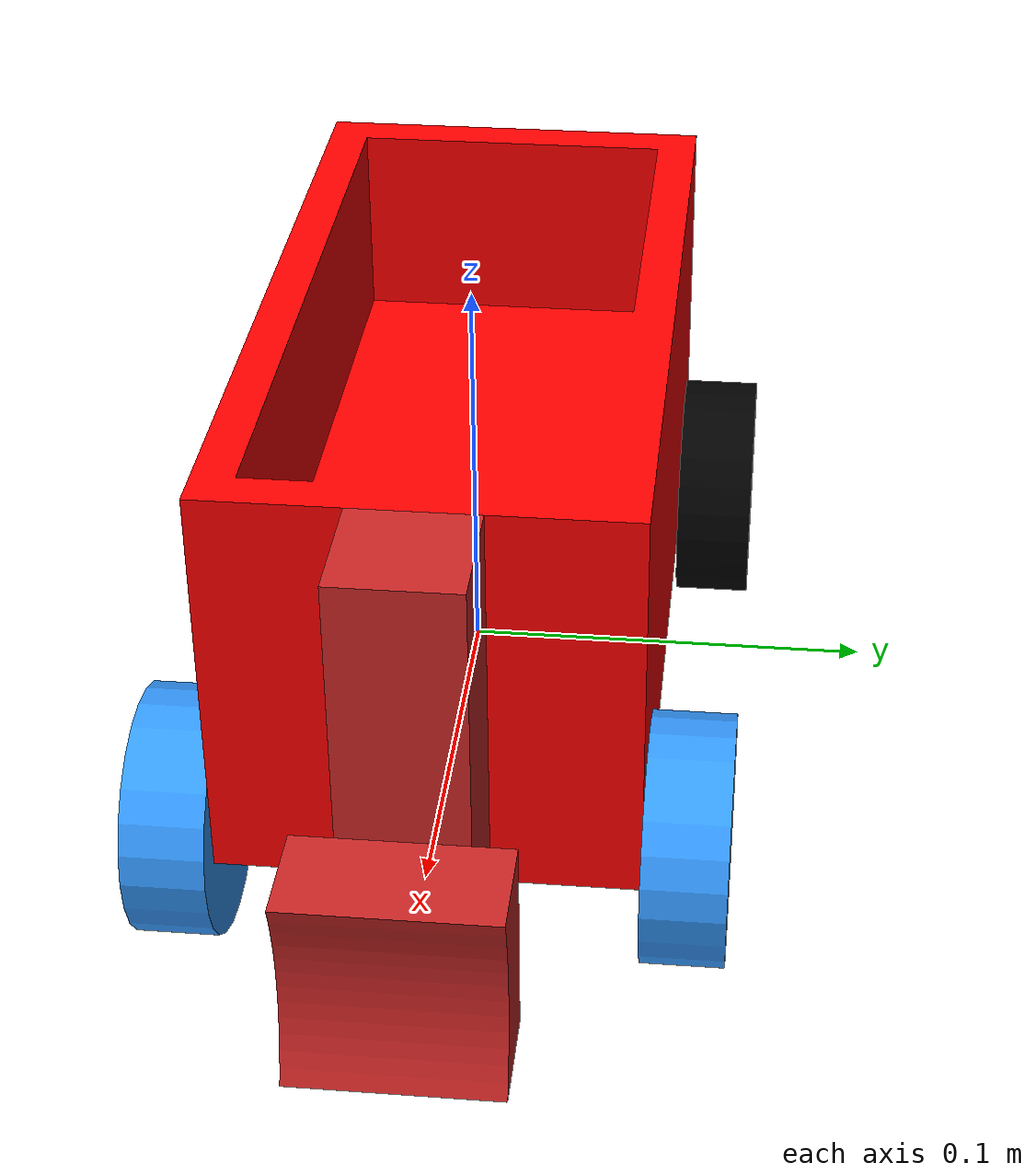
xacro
<?xml version="1.0"?>
<robot xmlns:xacro="http://www.ros.org/wiki/xacro"  name="robot">

    <xacro:include filename="robot_core.xacro" />
    <xacro:include filename="gazebo_control.xacro" />
    <xacro:include filename="arm_tr.xacro"/>
    <xacro:include filename="gripper_tr.xacro" />
    <xacro:include filename="lidar.xacro" />

    <ros2_control name="gripper_robot_gazebo_system" type="system">
        <hardware>
            <plugin>gazebo_ros2_control/GazeboSystem</plugin>
        </hardware>
        <xacro:arm_tr/>
        <xacro:gripper1_tr/>
    </ros2_control>
    <xacro:robot_controller/>

</robot>

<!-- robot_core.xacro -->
<robot xmlns:xacro="http://www.ros.org/wiki/xacro" >
<xacro:include filename="inertial_macros.xacro" />

    <material name="white">
        <color rgba="1 1 1 1" />
    </material>

    <material name="orange">
        <color rgba="1 0.5 0 1"/>
    </material>

    <material name="blue">
        <color rgba="0.2 0.6 1 1"/>
    </material>

    <material name="black">
        <color rgba="0 0 0 1"/>
    </material>

    <material name="red">
        <color rgba="1 0 0 1"/>
    </material>

<!-- BASE LINK -->
<link name="base_link">

</link>

<joint name="chassis_joint" type="fixed">
    <parent link="base_link"/>
    <child link="chassis"/>
    <origin xyz="0 0 0"/>
</joint>

<link name="chassis">
    <visual>
        <geometry>
            <mesh filename="file://$(find articubot_one)/description/NewBody.dae" scale="10 10 10"/>
        </geometry>
        <material name="red"/>
    </visual>
    <collision>
        <geometry>
         <mesh filename="file://$(find articubot_one)/description/NewBody.dae" scale="10 10 10"/>
        </geometry>
    </collision>
    <xacro:inertial_box mass="40" x="0.2" y="0.1" z="0.1">
        <origin xyz="0 0 0.05" rpy="0 0 0"/>
    </xacro:inertial_box>
</link>
<gazebo reference="chassis">
    <material>Gazebo/Orange</material>
</gazebo>

<!-- LEFT WHEEL back-->
<joint name= "left_wheel_back_joint" type="continuous">
    <parent link="base_link"/>
    <child link="left_wheel_back"/>
    <origin xyz=" -0.08 0.06 0" rpy="-${pi/2} 0 0"/>
    <axis xyz="0 0 1"/>
</joint>

<link name="left_wheel_back">
    <visual>
        <geometry>
            <cylinder length="0.02" radius="0.03" />
        </geometry>
        <material name="black"/>
    </visual>
    <collision>
        <geometry>
            <cylinder length="0.02" radius="0.03" />
        </geometry>
    </collision>
    <xacro:inertial_cylinder mass="6" length="0.02" radius="0.03">
        <origin xyz="0 0 0" rpy="0 0 0"/>
    </xacro:inertial_cylinder>
</link>
<gazebo reference="left_wheel_back">
    <material>Gazebo/Black</material>
    <mu1 value="0.8"/>
    <mu2 value="0.8"/>
</gazebo>

<!-- LEFT WHEEL FRONT-->
<joint name="left_wheel_front_joint" type="continuous">
    <parent link="base_link"/>
    <child link="left_wheel_front"/>
    <origin xyz=" 0.08 0.06 0" rpy="-${pi/2} 0 0"/>
    <axis xyz="0 0 1"/>
</joint>

<link name="left_wheel_front">
    <visual>
        <geometry>
            <cylinder length="0.02" radius="0.03" />
        </geometry>
        <material name="blue"/>
    </visual>
    <collision>
        <geometry>
            <cylinder length="0.02" radius="0.03" />
        </geometry>
    </collision>
    <xacro:inertial_cylinder mass="6" length="0.02" radius="0.03">
        <origin xyz="0 0 0" rpy="0 0 0"/>
    </xacro:inertial_cylinder>
</link>
<gazebo reference="left_wheel_front">
    <material>Gazebo/Blue</material>
    <mu1 value="0.8"/>
    <mu2 value="0.8"/>
</gazebo>

<!-- RIGHT WHEEL BACK-->

<joint name="right_wheel_back_joint" type="continuous">
    <parent link="base_link"/>
    <child link="right_wheel_back"/>
    <origin xyz="-0.08 -0.06 0" rpy=" ${pi/2} 0 0"/>
    <axis xyz="0 0 -1"/>
</joint>

<link name="right_wheel_back">
    <visual>
        <geometry>
            <cylinder length="0.02" radius="0.03" />
        </geometry>
        <material name="black"/>
    </visual>
    <collision>
        <geometry>
            <cylinder length="0.02" radius="0.03" />
        </geometry>
    </collision>
    <xacro:inertial_cylinder mass="6" length="0.02" radius="0.03">
        <origin xyz="0 0 0" rpy="0 0 0"/>
    </xacro:inertial_cylinder>
</link>
<gazebo reference="right_wheel_back">
    <material>Gazebo/Black</material>
    <mu1 value="0.8"/>
    <mu2 value="0.8"/>
</gazebo>

<!-- RIGHT WHEEL FRONT-->

<joint name="right_wheel_front_joint" type="continuous">
    <parent link="base_link"/>
    <child link="right_wheel_front"/>
    <origin xyz="0.08 -0.06 0" rpy="${pi/2} 0 0"/>
    <axis xyz="0 0 -1"/>
</joint>

<link name="right_wheel_front">
    <visual>
        <geometry>
            <cylinder length="0.02" radius="0.03" />
        </geometry>
        <material name="blue"/>
    </visual>
    <collision>
        <geometry>
            <cylinder length="0.02" radius="0.03" />
        </geometry>
    </collision>
    <xacro:inertial_cylinder mass="6" length="0.02" radius="0.03">
        <origin xyz="0 0 0" rpy="0 0 0"/>
    </xacro:inertial_cylinder>
</link>
<gazebo reference="right_wheel_front">
    <material>Gazebo/Blue</material>
    <mu1 value="0.8"/>
    <mu2 value="0.8"/>
</gazebo>

<!-- arm -->

<joint name="arm_joint" type="revolute">
    <parent link="chassis"/>
    <child link="arm"/>
    <origin xyz="0.1 0 0.1" rpy="0 0 0"/>
    <axis xyz="0 -1 0"/>
    <limit effort="100" velocity="10" lower="0" upper="${pi}"/>
    <dynamics damping="1" friction="1"/>
</joint>

<link name="arm">
    <visual>
        <origin xyz="0.015 0 -0.05" rpy="0 0 0"/>
        <geometry>
            <box size="0.03 0.03 0.1"/>
        </geometry>
    </visual>
    <collision>
        <origin xyz="0.015 0 -0.05" rpy="0 0 0"/>
        <geometry>
            <box size="0.03 0.03 0.1"/>
        </geometry>
    </collision>
    <xacro:inertial_box mass="0.5" x="0.03" y="0.03" z="0.1">
        <origin xyz="0.015 0 -0.05" rpy="0 0 0"/>
    </xacro:inertial_box>
</link>
<gazebo reference="arm">
    <material>Gazebo/Red</material>
</gazebo>

<!-- Front_arm -->

<joint name= "front_arm_joint" type="revolute">
    <parent link="arm"/>
    <child link="front_arm_link"/>
    <origin xyz="0.03  0 -0.08" rpy="0 0 ${pi/2}"/>
    <axis xyz="1 0 0"/>
    <limit effort= "100" velocity="5" lower="0" upper="${pi/3}"/>
</joint>

<link name= "front_arm_link" >
      <visual>
        <origin xyz="0 0 -0.01" rpy="0 0 0"/>
        <geometry>
            <mesh filename="file://$(find articubot_one)/description/handed2.dae" scale="5 5 5"/>
        </geometry>
    </visual>
    <collision>
        <origin xyz="0 0 -0.01" rpy="0 0 0"/>
        <geometry>
             <mesh filename="file://$(find articubot_one)/description/handed2.dae" scale="5 5 5"/>
        </geometry>
    </collision>
    <xacro:inertial_box mass="0.05" x="0.05" y="0.025" z="0.05">
        <origin xyz="0 0 -0.01" rpy="0 0 0"/>
    </xacro:inertial_box>
</link>
<gazebo reference="front_arm_link">
    <material>Gazebo/Red</material>
</gazebo>

</robot>

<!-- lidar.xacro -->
<robot xmlns:xacro="http://www.ros.org/wiki/xacro" >

    <joint name="laser_joint" type="fixed">
        <parent link="chassis"/>
        <child link="laser_frame"/>
        <origin xyz="0 0 -0.005" rpy="0 0 0"/>
    </joint>

    <link name="laser_frame">
        <visual>
            <geometry>
                <cylinder radius="0.01" length="0.01"/>
            </geometry>
            <material name="blue"/>
        </visual>
        <collision>
            <geometry>
                <cylinder radius="0.01" length="0.01"/>
            </geometry>
        </collision>
        <xacro:inertial_cylinder mass="0.1" length="0.01" radius="0.01">
            <origin xyz="0 0 0" rpy="0 0 0"/>
        </xacro:inertial_cylinder>
    </link>

    <gazebo reference="laser_frame">
        <material>Gazebo/Red</material>

        <sensor name="laser" type="ray">
            <pose> 0 0 0 0 0 0 </pose>
            <visualize>true</visualize>
            <update_rate>10</update_rate>
            <ray>
                <scan>
                    <horizontal>
                        <samples>90</samples>
                        <min_angle>-3.14</min_angle>
                        <max_angle>3.14</max_angle>
                    </horizontal>
                </scan>
                <range>
                    <min>0.3</min>
                    <max>12</max>
                </range>
            </ray>

            <plugin name="laser_controller" filename="libgazebo_ros_ray_sensor.so">
                <ros>
                    <argument>~/out:=scan</argument>
                </ros>
                <output_type>sensor_msgs/LaserScan</output_type>
                <frame_name>laser_frame</frame_name>
            </plugin>
        </sensor>
    </gazebo>

</robot>
